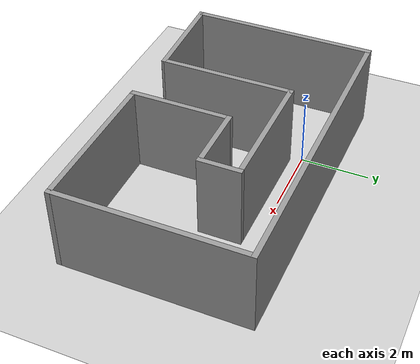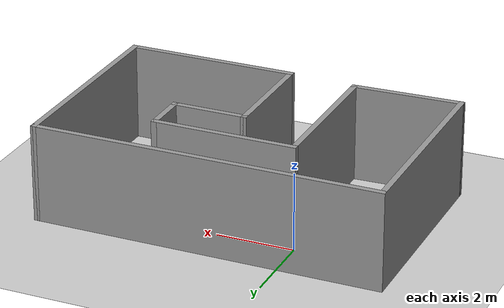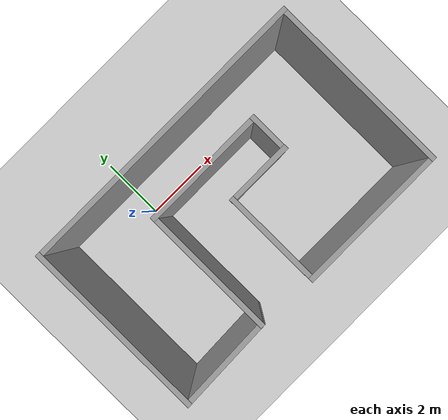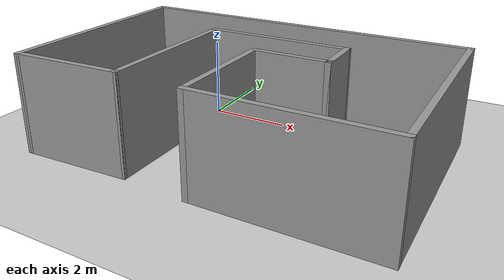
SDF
<sdf version="1.6">
 <world name="default">
  <light name="sun" type="directional">
   <pose>0 0 10 0 -0 0</pose>
   <diffuse>0.8 0.8 0.8 1</diffuse>
   <specular>0.2 0.2 0.2 1</specular>
   <attenuation>
    <range>1000</range>
    <constant>0.9</constant>
    <linear>0.01</linear>
    <quadratic>0.001</quadratic>
   </attenuation>
   <direction>-0.5 0.1 -0.9</direction>
  </light>
  <model name="ground_plane">
   <static>1</static>
   <link name="link">
    <collision name="collision">
     <geometry><plane><normal>0 0 1</normal><size>100 100</size></plane></geometry>
     <surface>
      <contact><collide_bitmask>65535</collide_bitmask></contact>
      <friction><ode><mu>100</mu><mu2>50</mu2></ode></friction>
     </surface>
    </collision>
    <visual name="visual">
     <cast_shadows>0</cast_shadows>
     <geometry><plane><normal>0 0 1</normal><size>100 100</size></plane></geometry>
     <material>
      <script><uri>file://media/materials/scripts/gazebo.material</uri><name>Gazebo/Grey</name></script>
     </material>
    </visual>
   </link>
  </model>
  <gravity>0 0 -9.8</gravity>
  <magnetic_field>6e-06 2.3e-05 -4.2e-05</magnetic_field>
  <atmosphere type="adiabatic"/>
  <physics name="default_physics" default="0" type="ode">
   <max_step_size>0.001</max_step_size>
   <real_time_factor>1</real_time_factor>
   <real_time_update_rate>1000</real_time_update_rate>
  </physics>
  <scene><ambient>0.4 0.4 0.4 1</ambient><background>0.7 0.7 0.7 1</background><shadows>1</shadows></scene>
  <audio><device>default</device></audio>
  <spherical_coordinates>
   <surface_model>EARTH_WGS84</surface_model>
   <latitude_deg>0</latitude_deg>
   <longitude_deg>0</longitude_deg>
   <elevation>0</elevation>
   <heading_deg>0</heading_deg>
  </spherical_coordinates>
  <model name="testhome">
   <pose>1.86481 -1.67314 0 0 -0 0</pose>
   <link name="Wall_0">
    <collision name="Wall_0_Collision">
     <geometry><box><size>5.5 0.15 2.5</size></box></geometry>
     <pose>0 0 1.25 0 -0 0</pose>
    </collision>
    <visual name="Wall_0_Visual">
     <pose>0 0 1.25 0 -0 0</pose>
     <geometry><box><size>5.5 0.15 2.5</size></box></geometry>
     <material>
      <script><uri>file://media/materials/scripts/gazebo.material</uri><name>Gazebo/Grey</name></script>
      <ambient>1 1 1 1</ambient>
     </material>
     <meta><layer>0</layer></meta>
    </visual>
    <pose>-4.42366 0.001338 0 0 -0 1.5708</pose>
   </link>
   <link name="Wall_1">
    <collision name="Wall_1_Collision">
     <geometry><box><size>9 0.15 2.5</size></box></geometry>
     <pose>0 0 1.25 0 -0 0</pose>
    </collision>
    <visual name="Wall_1_Visual">
     <pose>0 0 1.25 0 -0 0</pose>
     <geometry><box><size>9 0.15 2.5</size></box></geometry>
     <material>
      <script><uri>file://media/materials/scripts/gazebo.material</uri><name>Gazebo/Grey</name></script>
      <ambient>1 1 1 1</ambient>
     </material>
     <meta><layer>0</layer></meta>
    </visual>
    <pose>0.001338 2.67634 0 0 -0 0</pose>
   </link>
   <link name="Wall_2">
    <collision name="Wall_2_Collision">
     <geometry><box><size>5.5 0.15 2.5</size></box></geometry>
     <pose>0 0 1.25 0 -0 0</pose>
    </collision>
    <visual name="Wall_2_Visual">
     <pose>0 0 1.25 0 -0 0</pose>
     <geometry><box><size>5.5 0.15 2.5</size></box></geometry>
     <material>
      <script><uri>file://media/materials/scripts/gazebo.material</uri><name>Gazebo/Grey</name></script>
      <ambient>1 1 1 1</ambient>
     </material>
     <meta><layer>0</layer></meta>
    </visual>
    <pose>4.42634 0.001338 0 0 -0 -1.5708</pose>
   </link>
   <link name="Wall_3">
    <collision name="Wall_3_Collision">
     <geometry><box><size>4.5 0.15 2.5</size></box></geometry>
     <pose>0 0 1.25 0 -0 0</pose>
    </collision>
    <visual name="Wall_3_Visual">
     <pose>0 0 1.25 0 -0 0</pose>
     <geometry><box><size>4.5 0.15 2.5</size></box></geometry>
     <material>
      <script><uri>file://media/materials/scripts/gazebo.material</uri><name>Gazebo/Grey</name></script>
      <ambient>1 1 1 1</ambient>
     </material>
     <meta><layer>0</layer></meta>
    </visual>
    <pose>2.25134 -2.67366 0 0 -0 3.14159</pose>
   </link>
   <link name="Wall_4">
    <collision name="Wall_4_Collision">
     <geometry><box><size>3 0.15 2.5</size></box></geometry>
     <pose>0 0 1.25 0 -0 0</pose>
    </collision>
    <visual name="Wall_4_Visual">
     <pose>0 0 1.25 0 -0 0</pose>
     <geometry><box><size>3 0.15 2.5</size></box></geometry>
     <material>
      <script><uri>file://media/materials/scripts/gazebo.material</uri><name>Gazebo/Grey</name></script>
      <ambient>1 1 1 1</ambient>
     </material>
     <meta><layer>0</layer></meta>
    </visual>
    <pose>0.076338 -1.24866 0 0 -0 1.5708</pose>
   </link>
   <link name="Wall_5">
    <collision name="Wall_5_Collision">
     <geometry><box><size>2 0.15 2.5</size></box></geometry>
     <pose>0 0 1.25 0 -0 0</pose>
    </collision>
    <visual name="Wall_5_Visual">
     <pose>0 0 1.25 0 -0 0</pose>
     <geometry><box><size>2 0.15 2.5</size></box></geometry>
     <material>
      <script><uri>file://media/materials/scripts/gazebo.material</uri><name>Gazebo/Grey</name></script>
      <ambient>1 1 1 1</ambient>
     </material>
     <meta><layer>0</layer></meta>
    </visual>
    <pose>1.00134 0.176338 0 0 -0 0</pose>
   </link>
   <link name="Wall_6">
    <collision name="Wall_6_Collision">
     <geometry><box><size>1.25 0.15 2.5</size></box></geometry>
     <pose>0 0 1.25 0 -0 0</pose>
    </collision>
    <visual name="Wall_6_Visual">
     <pose>0 0 1.25 0 -0 0</pose>
     <geometry><box><size>1.25 0.15 2.5</size></box></geometry>
     <material>
      <script><uri>file://media/materials/scripts/gazebo.material</uri><name>Gazebo/Grey</name></script>
      <ambient>1 1 1 1</ambient>
     </material>
     <meta><layer>0</layer></meta>
    </visual>
    <pose>1.92634 0.726338 0 0 -0 1.5708</pose>
   </link>
   <link name="Wall_7">
    <collision name="Wall_7_Collision">
     <geometry><box><size>3.75 0.15 2.5</size></box></geometry>
     <pose>0 0 1.25 0 -0 0</pose>
    </collision>
    <visual name="Wall_7_Visual">
     <pose>0 0 1.25 0 -0 0</pose>
     <geometry><box><size>3.75 0.15 2.5</size></box></geometry>
     <material>
      <script><uri>file://media/materials/scripts/gazebo.material</uri><name>Gazebo/Grey</name></script>
      <ambient>1 1 1 1</ambient>
     </material>
     <meta><layer>0</layer></meta>
    </visual>
    <pose>0.126338 1.27634 0 0 -0 3.14159</pose>
   </link>
   <link name="Wall_8">
    <collision name="Wall_8_Collision">
     <geometry><box><size>4 0.15 2.5</size></box></geometry>
     <pose>0 0 1.25 0 -0 0</pose>
    </collision>
    <visual name="Wall_8_Visual">
     <pose>0 0 1.25 0 -0 0</pose>
     <geometry><box><size>4 0.15 2.5</size></box></geometry>
     <material>
      <script><uri>file://media/materials/scripts/gazebo.material</uri><name>Gazebo/Grey</name></script>
      <ambient>1 1 1 1</ambient>
     </material>
     <meta><layer>0</layer></meta>
    </visual>
    <pose>-1.67366 -0.648662 0 0 -0 -1.5708</pose>
   </link>
   <link name="Wall_9">
    <collision name="Wall_9_Collision">
     <geometry><box><size>2.90182 0.15 2.5</size></box></geometry>
     <pose>0 0 1.25 0 -0 0</pose>
    </collision>
    <visual name="Wall_9_Visual">
     <pose>0 0 1.25 0 -0 0</pose>
     <geometry><box><size>2.90182 0.15 2.5</size></box></geometry>
     <material>
      <script><uri>file://media/materials/scripts/gazebo.material</uri><name>Gazebo/Grey</name></script>
      <ambient>1 1 1 1</ambient>
     </material>
     <meta><layer>0</layer></meta>
    </visual>
    <pose>-3.04866 -2.62366 0 0 -0 -3.10525</pose>
   </link>
   <static>1</static>
  </model>
 </world>
</sdf>
